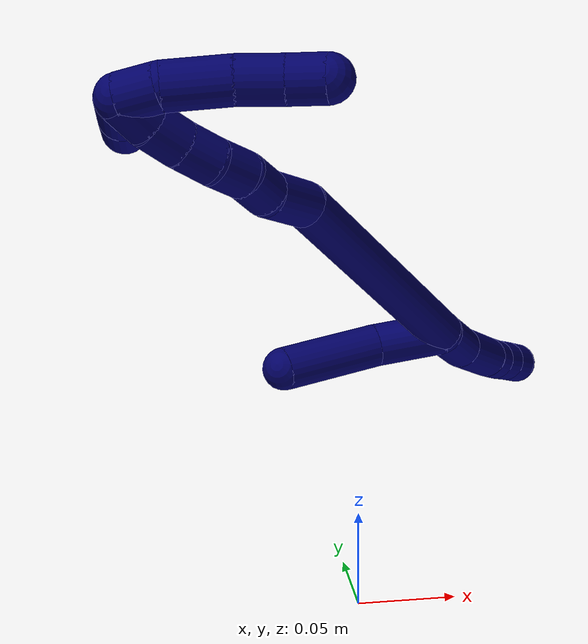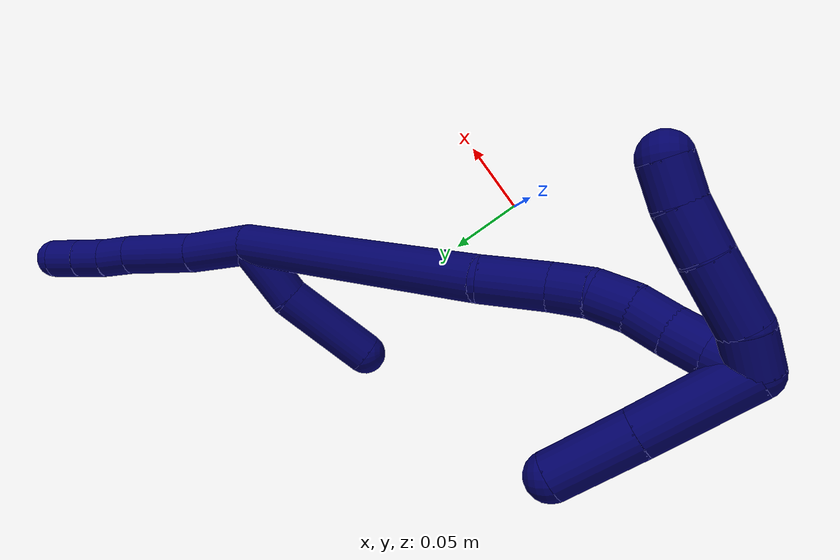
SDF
<sdf version="1.7">
 <world name="default">
  <model name="7">
   <static>0</static>
   <link name="7">
    <collision name="collision-cylinder-e_1_2_8">
     <pose>0.000343 -3.3e-05 0.021095 0.001566 0.01628 1.3e-05</pose>
     <geometry><cylinder><radius>0.0125</radius><length>0.042196</length></cylinder></geometry>
     <surface>
      <friction><ode><mu>1.16</mu><mu2>1.16</mu2><slip1>0</slip1><slip2>0</slip2></ode></friction>
      <contact><ode><kp>1e+06</kp><kd>1</kd><max_vel>0</max_vel><min_depth>0.001</min_depth></ode></contact>
     </surface>
    </collision>
    <visual name="visual-cylinder-e_1_2_8">
     <pose>0.000343 -3.3e-05 0.021095 0.001566 0.01628 1.3e-05</pose>
     <geometry><cylinder><radius>0.0125</radius><length>0.042196</length></cylinder></geometry>
     <material><ambient>0.003922 0 0.403922 1</ambient></material>
    </visual>
    <collision name="collision-cylinder-e_2_8_9">
     <pose>0.003801 -0.000459 0.065854 0.016623 0.130811 0.001089</pose>
     <geometry><cylinder><radius>0.0125</radius><length>0.047742</length></cylinder></geometry>
     <surface>
      <friction><ode><mu>1.16</mu><mu2>1.16</mu2><slip1>0</slip1><slip2>0</slip2></ode></friction>
      <contact><ode><kp>1e+06</kp><kd>1</kd><max_vel>0</max_vel><min_depth>0.001</min_depth></ode></contact>
     </surface>
    </collision>
    <visual name="visual-cylinder-e_2_8_9">
     <pose>0.003801 -0.000459 0.065854 0.016623 0.130811 0.001089</pose>
     <geometry><cylinder><radius>0.0125</radius><length>0.047742</length></cylinder></geometry>
     <material><ambient>0.003922 0 0.403922 1</ambient></material>
    </visual>
    <collision name="collision-cylinder-e_3_9_10">
     <pose>0.007782 -0.001818 0.099436 0.097001 0.08682 0.004217</pose>
     <geometry><cylinder><radius>0.0125</radius><length>0.020007</length></cylinder></geometry>
     <surface>
      <friction><ode><mu>1.16</mu><mu2>1.16</mu2><slip1>0</slip1><slip2>0</slip2></ode></friction>
      <contact><ode><kp>1e+06</kp><kd>1</kd><max_vel>0</max_vel><min_depth>0.001</min_depth></ode></contact>
     </surface>
    </collision>
    <visual name="visual-cylinder-e_3_9_10">
     <pose>0.007782 -0.001818 0.099436 0.097001 0.08682 0.004217</pose>
     <geometry><cylinder><radius>0.0125</radius><length>0.020007</length></cylinder></geometry>
     <material><ambient>0.003922 0 0.403922 1</ambient></material>
    </visual>
    <collision name="collision-cylinder-e_4_10_11">
     <pose>0.010431 -0.003573 0.119175 0.080233 0.178965 0.007203</pose>
     <geometry><cylinder><radius>0.0125</radius><length>0.020024</length></cylinder></geometry>
     <surface>
      <friction><ode><mu>1.16</mu><mu2>1.16</mu2><slip1>0</slip1><slip2>0</slip2></ode></friction>
      <contact><ode><kp>1e+06</kp><kd>1</kd><max_vel>0</max_vel><min_depth>0.001</min_depth></ode></contact>
     </surface>
    </collision>
    <visual name="visual-cylinder-e_4_10_11">
     <pose>0.010431 -0.003573 0.119175 0.080233 0.178965 0.007203</pose>
     <geometry><cylinder><radius>0.0125</radius><length>0.020024</length></cylinder></geometry>
     <material><ambient>0.003922 0 0.403922 1</ambient></material>
    </visual>
    <collision name="collision-cylinder-e_5_11_6">
     <pose>0.014019 -0.004915 0.138832 0.056105 0.181281 0.005101</pose>
     <geometry><cylinder><radius>0.0125</radius><length>0.020032</length></cylinder></geometry>
     <surface>
      <friction><ode><mu>1.16</mu><mu2>1.16</mu2><slip1>0</slip1><slip2>0</slip2></ode></friction>
      <contact><ode><kp>1e+06</kp><kd>1</kd><max_vel>0</max_vel><min_depth>0.001</min_depth></ode></contact>
     </surface>
    </collision>
    <visual name="visual-cylinder-e_5_11_6">
     <pose>0.014019 -0.004915 0.138832 0.056105 0.181281 0.005101</pose>
     <geometry><cylinder><radius>0.0125</radius><length>0.020032</length></cylinder></geometry>
     <material><ambient>0.003922 0 0.403922 1</ambient></material>
    </visual>
    <collision name="collision-cylinder-e_1_2_12">
     <pose>-0.018562 -0.002818 -0.007963 2.80144 -1.14374 -2.62008</pose>
     <geometry><cylinder><radius>0.0125</radius><length>0.040788</length></cylinder></geometry>
     <surface>
      <friction><ode><mu>1.16</mu><mu2>1.16</mu2><slip1>0</slip1><slip2>0</slip2></ode></friction>
      <contact><ode><kp>1e+06</kp><kd>1</kd><max_vel>0</max_vel><min_depth>0.001</min_depth></ode></contact>
     </surface>
    </collision>
    <visual name="visual-cylinder-e_1_2_12">
     <pose>-0.018562 -0.002818 -0.007963 2.80144 -1.14374 -2.62008</pose>
     <geometry><cylinder><radius>0.0125</radius><length>0.040788</length></cylinder></geometry>
     <material><ambient>0.003922 0 0.403922 1</ambient></material>
    </visual>
    <collision name="collision-cylinder-e_2_12_5">
     <pose>-0.061027 -0.005319 -0.033393 -3.12344 -0.939644 3.10585</pose>
     <geometry><cylinder><radius>0.0125</radius><length>0.059212</length></cylinder></geometry>
     <surface>
      <friction><ode><mu>1.16</mu><mu2>1.16</mu2><slip1>0</slip1><slip2>0</slip2></ode></friction>
      <contact><ode><kp>1e+06</kp><kd>1</kd><max_vel>0</max_vel><min_depth>0.001</min_depth></ode></contact>
     </surface>
    </collision>
    <visual name="visual-cylinder-e_2_12_5">
     <pose>-0.061027 -0.005319 -0.033393 -3.12344 -0.939644 3.10585</pose>
     <geometry><cylinder><radius>0.0125</radius><length>0.059212</length></cylinder></geometry>
     <material><ambient>0.003922 0 0.403922 1</ambient></material>
    </visual>
    <collision name="collision-cylinder-e_1_2_13">
     <pose>-0.008606 -0.023361 -0.077602 2.84919 -0.10579 -0.690314</pose>
     <geometry><cylinder><radius>0.0125</radius><length>0.162995</length></cylinder></geometry>
     <surface>
      <friction><ode><mu>1.16</mu><mu2>1.16</mu2><slip1>0</slip1><slip2>0</slip2></ode></friction>
      <contact><ode><kp>1e+06</kp><kd>1</kd><max_vel>0</max_vel><min_depth>0.001</min_depth></ode></contact>
     </surface>
    </collision>
    <visual name="visual-cylinder-e_1_2_13">
     <pose>-0.008606 -0.023361 -0.077602 2.84919 -0.10579 -0.690314</pose>
     <geometry><cylinder><radius>0.0125</radius><length>0.162995</length></cylinder></geometry>
     <material><ambient>0.003922 0 0.403922 1</ambient></material>
    </visual>
    <collision name="collision-cylinder-e_2_13_14">
     <pose>-0.021945 -0.046765 -0.172494 3.13907 -0.267249 -3.12282</pose>
     <geometry><cylinder><radius>0.0125</radius><length>0.035853</length></cylinder></geometry>
     <surface>
      <friction><ode><mu>1.16</mu><mu2>1.16</mu2><slip1>0</slip1><slip2>0</slip2></ode></friction>
      <contact><ode><kp>1e+06</kp><kd>1</kd><max_vel>0</max_vel><min_depth>0.001</min_depth></ode></contact>
     </surface>
    </collision>
    <visual name="visual-cylinder-e_2_13_14">
     <pose>-0.021945 -0.046765 -0.172494 3.13907 -0.267249 -3.12282</pose>
     <geometry><cylinder><radius>0.0125</radius><length>0.035853</length></cylinder></geometry>
     <material><ambient>0.003922 0 0.403922 1</ambient></material>
    </visual>
    <collision name="collision-cylinder-e_3_14_15">
     <pose>-0.02804 -0.049471 -0.199705 2.8794 -0.131762 -0.9279</pose>
     <geometry><cylinder><radius>0.0125</radius><length>0.020724</length></cylinder></geometry>
     <surface>
      <friction><ode><mu>1.16</mu><mu2>1.16</mu2><slip1>0</slip1><slip2>0</slip2></ode></friction>
      <contact><ode><kp>1e+06</kp><kd>1</kd><max_vel>0</max_vel><min_depth>0.001</min_depth></ode></contact>
     </surface>
    </collision>
    <visual name="visual-cylinder-e_3_14_15">
     <pose>-0.02804 -0.049471 -0.199705 2.8794 -0.131762 -0.9279</pose>
     <geometry><cylinder><radius>0.0125</radius><length>0.020724</length></cylinder></geometry>
     <material><ambient>0.003922 0 0.403922 1</ambient></material>
    </visual>
    <collision name="collision-cylinder-e_4_15_16">
     <pose>-0.033202 -0.054764 -0.218714 2.85986 -0.381968 -1.87593</pose>
     <geometry><cylinder><radius>0.0125</radius><length>0.020391</length></cylinder></geometry>
     <surface>
      <friction><ode><mu>1.16</mu><mu2>1.16</mu2><slip1>0</slip1><slip2>0</slip2></ode></friction>
      <contact><ode><kp>1e+06</kp><kd>1</kd><max_vel>0</max_vel><min_depth>0.001</min_depth></ode></contact>
     </surface>
    </collision>
    <visual name="visual-cylinder-e_4_15_16">
     <pose>-0.033202 -0.054764 -0.218714 2.85986 -0.381968 -1.87593</pose>
     <geometry><cylinder><radius>0.0125</radius><length>0.020391</length></cylinder></geometry>
     <material><ambient>0.003922 0 0.403922 1</ambient></material>
    </visual>
    <collision name="collision-cylinder-e_5_16_17">
     <pose>-0.041272 -0.061804 -0.235704 2.63262 -0.440824 -1.42206</pose>
     <geometry><cylinder><radius>0.0125</radius><length>0.020013</length></cylinder></geometry>
     <surface>
      <friction><ode><mu>1.16</mu><mu2>1.16</mu2><slip1>0</slip1><slip2>0</slip2></ode></friction>
      <contact><ode><kp>1e+06</kp><kd>1</kd><max_vel>0</max_vel><min_depth>0.001</min_depth></ode></contact>
     </surface>
    </collision>
    <visual name="visual-cylinder-e_5_16_17">
     <pose>-0.041272 -0.061804 -0.235704 2.63262 -0.440824 -1.42206</pose>
     <geometry><cylinder><radius>0.0125</radius><length>0.020013</length></cylinder></geometry>
     <material><ambient>0.003922 0 0.403922 1</ambient></material>
    </visual>
    <collision name="collision-cylinder-e_6_17_18">
     <pose>-0.049059 -0.070825 -0.251765 2.62715 -0.359105 -1.20799</pose>
     <geometry><cylinder><radius>0.0125</radius><length>0.020021</length></cylinder></geometry>
     <surface>
      <friction><ode><mu>1.16</mu><mu2>1.16</mu2><slip1>0</slip1><slip2>0</slip2></ode></friction>
      <contact><ode><kp>1e+06</kp><kd>1</kd><max_vel>0</max_vel><min_depth>0.001</min_depth></ode></contact>
     </surface>
    </collision>
    <visual name="visual-cylinder-e_6_17_18">
     <pose>-0.049059 -0.070825 -0.251765 2.62715 -0.359105 -1.20799</pose>
     <geometry><cylinder><radius>0.0125</radius><length>0.020021</length></cylinder></geometry>
     <material><ambient>0.003922 0 0.403922 1</ambient></material>
    </visual>
    <collision name="collision-cylinder-e_7_18_1">
     <pose>-0.054587 -0.080533 -0.268292 2.59451 -0.202319 -0.694259</pose>
     <geometry><cylinder><radius>0.0125</radius><length>0.020004</length></cylinder></geometry>
     <surface>
      <friction><ode><mu>1.16</mu><mu2>1.16</mu2><slip1>0</slip1><slip2>0</slip2></ode></friction>
      <contact><ode><kp>1e+06</kp><kd>1</kd><max_vel>0</max_vel><min_depth>0.001</min_depth></ode></contact>
     </surface>
    </collision>
    <visual name="visual-cylinder-e_7_18_1">
     <pose>-0.054587 -0.080533 -0.268292 2.59451 -0.202319 -0.694259</pose>
     <geometry><cylinder><radius>0.0125</radius><length>0.020004</length></cylinder></geometry>
     <material><ambient>0.003922 0 0.403922 1</ambient></material>
    </visual>
    <collision name="collision-cylinder-e_1_1_19">
     <pose>-0.046521 -0.083586 -0.276082 -1.29523 1.36301 -1.10072</pose>
     <geometry><cylinder><radius>0.0125</radius><length>0.020596</length></cylinder></geometry>
     <surface>
      <friction><ode><mu>1.16</mu><mu2>1.16</mu2><slip1>0</slip1><slip2>0</slip2></ode></friction>
      <contact><ode><kp>1e+06</kp><kd>1</kd><max_vel>0</max_vel><min_depth>0.001</min_depth></ode></contact>
     </surface>
    </collision>
    <visual name="visual-cylinder-e_1_1_19">
     <pose>-0.046521 -0.083586 -0.276082 -1.29523 1.36301 -1.10072</pose>
     <geometry><cylinder><radius>0.0125</radius><length>0.020596</length></cylinder></geometry>
     <material><ambient>0.003922 0 0.403922 1</ambient></material>
    </visual>
    <collision name="collision-cylinder-e_2_19_20">
     <pose>-0.020615 -0.077081 -0.270115 -0.69148 1.15467 -0.460918</pose>
     <geometry><cylinder><radius>0.0125</radius><length>0.034613</length></cylinder></geometry>
     <surface>
      <friction><ode><mu>1.16</mu><mu2>1.16</mu2><slip1>0</slip1><slip2>0</slip2></ode></friction>
      <contact><ode><kp>1e+06</kp><kd>1</kd><max_vel>0</max_vel><min_depth>0.001</min_depth></ode></contact>
     </surface>
    </collision>
    <visual name="visual-cylinder-e_2_19_20">
     <pose>-0.020615 -0.077081 -0.270115 -0.69148 1.15467 -0.460918</pose>
     <geometry><cylinder><radius>0.0125</radius><length>0.034613</length></cylinder></geometry>
     <material><ambient>0.003922 0 0.403922 1</ambient></material>
    </visual>
    <collision name="collision-cylinder-e_3_20_21">
     <pose>0.006149 -0.068365 -0.261138 -0.870235 1.09992 -0.555213</pose>
     <geometry><cylinder><radius>0.0125</radius><length>0.024538</length></cylinder></geometry>
     <surface>
      <friction><ode><mu>1.16</mu><mu2>1.16</mu2><slip1>0</slip1><slip2>0</slip2></ode></friction>
      <contact><ode><kp>1e+06</kp><kd>1</kd><max_vel>0</max_vel><min_depth>0.001</min_depth></ode></contact>
     </surface>
    </collision>
    <visual name="visual-cylinder-e_3_20_21">
     <pose>0.006149 -0.068365 -0.261138 -0.870235 1.09992 -0.555213</pose>
     <geometry><cylinder><radius>0.0125</radius><length>0.024538</length></cylinder></geometry>
     <material><ambient>0.003922 0 0.403922 1</ambient></material>
    </visual>
    <collision name="collision-cylinder-e_4_21_4">
     <pose>0.026283 -0.060174 -0.255995 -1.19456 1.13968 -0.82197</pose>
     <geometry><cylinder><radius>0.0125</radius><length>0.020253</length></cylinder></geometry>
     <surface>
      <friction><ode><mu>1.16</mu><mu2>1.16</mu2><slip1>0</slip1><slip2>0</slip2></ode></friction>
      <contact><ode><kp>1e+06</kp><kd>1</kd><max_vel>0</max_vel><min_depth>0.001</min_depth></ode></contact>
     </surface>
    </collision>
    <visual name="visual-cylinder-e_4_21_4">
     <pose>0.026283 -0.060174 -0.255995 -1.19456 1.13968 -0.82197</pose>
     <geometry><cylinder><radius>0.0125</radius><length>0.020253</length></cylinder></geometry>
     <material><ambient>0.003922 0 0.403922 1</ambient></material>
    </visual>
    <collision name="collision-cylinder-e_1_1_22">
     <pose>-0.06475 -0.094276 -0.251639 0.332701 -0.298747 -0.050526</pose>
     <geometry><cylinder><radius>0.0125</radius><length>0.055399</length></cylinder></geometry>
     <surface>
      <friction><ode><mu>1.16</mu><mu2>1.16</mu2><slip1>0</slip1><slip2>0</slip2></ode></friction>
      <contact><ode><kp>1e+06</kp><kd>1</kd><max_vel>0</max_vel><min_depth>0.001</min_depth></ode></contact>
     </surface>
    </collision>
    <visual name="visual-cylinder-e_1_1_22">
     <pose>-0.06475 -0.094276 -0.251639 0.332701 -0.298747 -0.050526</pose>
     <geometry><cylinder><radius>0.0125</radius><length>0.055399</length></cylinder></geometry>
     <material><ambient>0.003922 0 0.403922 1</ambient></material>
    </visual>
    <collision name="collision-cylinder-e_2_22_3">
     <pose>-0.079261 -0.109664 -0.206335 0.320887 -0.289136 -0.047112</pose>
     <geometry><cylinder><radius>0.0125</radius><length>0.044601</length></cylinder></geometry>
     <surface>
      <friction><ode><mu>1.16</mu><mu2>1.16</mu2><slip1>0</slip1><slip2>0</slip2></ode></friction>
      <contact><ode><kp>1e+06</kp><kd>1</kd><max_vel>0</max_vel><min_depth>0.001</min_depth></ode></contact>
     </surface>
    </collision>
    <visual name="visual-cylinder-e_2_22_3">
     <pose>-0.079261 -0.109664 -0.206335 0.320887 -0.289136 -0.047112</pose>
     <geometry><cylinder><radius>0.0125</radius><length>0.044601</length></cylinder></geometry>
     <material><ambient>0.003922 0 0.403922 1</ambient></material>
    </visual>
    <collision name="collision-sphere-3">
     <pose>-0.085619 -0.116406 -0.186051 0 -0 0</pose>
     <geometry><sphere><radius>0.0125</radius></sphere></geometry>
     <surface>
      <friction><ode><mu>1.16</mu><mu2>1.16</mu2><slip1>0</slip1><slip2>0</slip2></ode></friction>
      <contact><ode><kp>1e+06</kp><kd>1</kd><max_vel>0</max_vel><min_depth>0.001</min_depth></ode></contact>
     </surface>
    </collision>
    <visual name="visual-sphere-3">
     <pose>-0.085619 -0.116406 -0.186051 0 -0 0</pose>
     <geometry><sphere><radius>0.0125</radius></sphere></geometry>
     <material><ambient>0.003922 0 0.403922 1</ambient></material>
    </visual>
    <collision name="collision-sphere-22">
     <pose>-0.072902 -0.102922 -0.226618 0 -0 0</pose>
     <geometry><sphere><radius>0.0125</radius></sphere></geometry>
     <surface>
      <friction><ode><mu>1.16</mu><mu2>1.16</mu2><slip1>0</slip1><slip2>0</slip2></ode></friction>
      <contact><ode><kp>1e+06</kp><kd>1</kd><max_vel>0</max_vel><min_depth>0.001</min_depth></ode></contact>
     </surface>
    </collision>
    <visual name="visual-sphere-22">
     <pose>-0.072902 -0.102922 -0.226618 0 -0 0</pose>
     <geometry><sphere><radius>0.0125</radius></sphere></geometry>
     <material><ambient>0.003922 0 0.403922 1</ambient></material>
    </visual>
    <collision name="collision-sphere-4">
     <pose>0.035482 -0.056238 -0.254441 0 -0 0</pose>
     <geometry><sphere><radius>0.0125</radius></sphere></geometry>
     <surface>
      <friction><ode><mu>1.16</mu><mu2>1.16</mu2><slip1>0</slip1><slip2>0</slip2></ode></friction>
      <contact><ode><kp>1e+06</kp><kd>1</kd><max_vel>0</max_vel><min_depth>0.001</min_depth></ode></contact>
     </surface>
    </collision>
    <visual name="visual-sphere-4">
     <pose>0.035482 -0.056238 -0.254441 0 -0 0</pose>
     <geometry><sphere><radius>0.0125</radius></sphere></geometry>
     <material><ambient>0.003922 0 0.403922 1</ambient></material>
    </visual>
    <collision name="collision-sphere-21">
     <pose>0.017083 -0.06411 -0.25755 0 -0 0</pose>
     <geometry><sphere><radius>0.0125</radius></sphere></geometry>
     <surface>
      <friction><ode><mu>1.16</mu><mu2>1.16</mu2><slip1>0</slip1><slip2>0</slip2></ode></friction>
      <contact><ode><kp>1e+06</kp><kd>1</kd><max_vel>0</max_vel><min_depth>0.001</min_depth></ode></contact>
     </surface>
    </collision>
    <visual name="visual-sphere-21">
     <pose>0.017083 -0.06411 -0.25755 0 -0 0</pose>
     <geometry><sphere><radius>0.0125</radius></sphere></geometry>
     <material><ambient>0.003922 0 0.403922 1</ambient></material>
    </visual>
    <collision name="collision-sphere-20">
     <pose>-0.004785 -0.07262 -0.264727 0 -0 0</pose>
     <geometry><sphere><radius>0.0125</radius></sphere></geometry>
     <surface>
      <friction><ode><mu>1.16</mu><mu2>1.16</mu2><slip1>0</slip1><slip2>0</slip2></ode></friction>
      <contact><ode><kp>1e+06</kp><kd>1</kd><max_vel>0</max_vel><min_depth>0.001</min_depth></ode></contact>
     </surface>
    </collision>
    <visual name="visual-sphere-20">
     <pose>-0.004785 -0.07262 -0.264727 0 -0 0</pose>
     <geometry><sphere><radius>0.0125</radius></sphere></geometry>
     <material><ambient>0.003922 0 0.403922 1</ambient></material>
    </visual>
    <collision name="collision-sphere-6">
     <pose>0.015825 -0.005467 0.148668 0 -0 0</pose>
     <geometry><sphere><radius>0.0125</radius></sphere></geometry>
     <surface>
      <friction><ode><mu>1.16</mu><mu2>1.16</mu2><slip1>0</slip1><slip2>0</slip2></ode></friction>
      <contact><ode><kp>1e+06</kp><kd>1</kd><max_vel>0</max_vel><min_depth>0.001</min_depth></ode></contact>
     </surface>
    </collision>
    <visual name="visual-sphere-6">
     <pose>0.015825 -0.005467 0.148668 0 -0 0</pose>
     <geometry><sphere><radius>0.0125</radius></sphere></geometry>
     <material><ambient>0.003922 0 0.403922 1</ambient></material>
    </visual>
    <collision name="collision-sphere-11">
     <pose>0.012214 -0.004362 0.128996 0 -0 0</pose>
     <geometry><sphere><radius>0.0125</radius></sphere></geometry>
     <surface>
      <friction><ode><mu>1.16</mu><mu2>1.16</mu2><slip1>0</slip1><slip2>0</slip2></ode></friction>
      <contact><ode><kp>1e+06</kp><kd>1</kd><max_vel>0</max_vel><min_depth>0.001</min_depth></ode></contact>
     </surface>
    </collision>
    <visual name="visual-sphere-11">
     <pose>0.012214 -0.004362 0.128996 0 -0 0</pose>
     <geometry><sphere><radius>0.0125</radius></sphere></geometry>
     <material><ambient>0.003922 0 0.403922 1</ambient></material>
    </visual>
    <collision name="collision-sphere-10">
     <pose>0.008649 -0.002783 0.109355 0 -0 0</pose>
     <geometry><sphere><radius>0.0125</radius></sphere></geometry>
     <surface>
      <friction><ode><mu>1.16</mu><mu2>1.16</mu2><slip1>0</slip1><slip2>0</slip2></ode></friction>
      <contact><ode><kp>1e+06</kp><kd>1</kd><max_vel>0</max_vel><min_depth>0.001</min_depth></ode></contact>
     </surface>
    </collision>
    <visual name="visual-sphere-10">
     <pose>0.008649 -0.002783 0.109355 0 -0 0</pose>
     <geometry><sphere><radius>0.0125</radius></sphere></geometry>
     <material><ambient>0.003922 0 0.403922 1</ambient></material>
    </visual>
    <collision name="collision-sphere-9">
     <pose>0.006914 -0.000853 0.089518 0 -0 0</pose>
     <geometry><sphere><radius>0.0125</radius></sphere></geometry>
     <surface>
      <friction><ode><mu>1.16</mu><mu2>1.16</mu2><slip1>0</slip1><slip2>0</slip2></ode></friction>
      <contact><ode><kp>1e+06</kp><kd>1</kd><max_vel>0</max_vel><min_depth>0.001</min_depth></ode></contact>
     </surface>
    </collision>
    <visual name="visual-sphere-9">
     <pose>0.006914 -0.000853 0.089518 0 -0 0</pose>
     <geometry><sphere><radius>0.0125</radius></sphere></geometry>
     <material><ambient>0.003922 0 0.403922 1</ambient></material>
    </visual>
    <collision name="collision-sphere-2">
     <geometry><sphere><radius>0.0125</radius></sphere></geometry>
     <surface>
      <friction><ode><mu>1.16</mu><mu2>1.16</mu2><slip1>0</slip1><slip2>0</slip2></ode></friction>
      <contact><ode><kp>1e+06</kp><kd>1</kd><max_vel>0</max_vel><min_depth>0.001</min_depth></ode></contact>
     </surface>
    </collision>
    <visual name="visual-sphere-2">
     <geometry><sphere><radius>0.0125</radius></sphere></geometry>
     <material><ambient>0.003922 0 0.403922 1</ambient></material>
    </visual>
    <collision name="collision-sphere-19">
     <pose>-0.036444 -0.081542 -0.275504 0 -0 0</pose>
     <geometry><sphere><radius>0.0125</radius></sphere></geometry>
     <surface>
      <friction><ode><mu>1.16</mu><mu2>1.16</mu2><slip1>0</slip1><slip2>0</slip2></ode></friction>
      <contact><ode><kp>1e+06</kp><kd>1</kd><max_vel>0</max_vel><min_depth>0.001</min_depth></ode></contact>
     </surface>
    </collision>
    <visual name="visual-sphere-19">
     <pose>-0.036444 -0.081542 -0.275504 0 -0 0</pose>
     <geometry><sphere><radius>0.0125</radius></sphere></geometry>
     <material><ambient>0.003922 0 0.403922 1</ambient></material>
    </visual>
    <collision name="collision-sphere-8">
     <pose>0.000687 -6.6e-05 0.04219 0 -0 0</pose>
     <geometry><sphere><radius>0.0125</radius></sphere></geometry>
     <surface>
      <friction><ode><mu>1.16</mu><mu2>1.16</mu2><slip1>0</slip1><slip2>0</slip2></ode></friction>
      <contact><ode><kp>1e+06</kp><kd>1</kd><max_vel>0</max_vel><min_depth>0.001</min_depth></ode></contact>
     </surface>
    </collision>
    <visual name="visual-sphere-8">
     <pose>0.000687 -6.6e-05 0.04219 0 -0 0</pose>
     <geometry><sphere><radius>0.0125</radius></sphere></geometry>
     <material><ambient>0.003922 0 0.403922 1</ambient></material>
    </visual>
    <collision name="collision-sphere-12">
     <pose>-0.037125 -0.005636 -0.015926 0 -0 0</pose>
     <geometry><sphere><radius>0.0125</radius></sphere></geometry>
     <surface>
      <friction><ode><mu>1.16</mu><mu2>1.16</mu2><slip1>0</slip1><slip2>0</slip2></ode></friction>
      <contact><ode><kp>1e+06</kp><kd>1</kd><max_vel>0</max_vel><min_depth>0.001</min_depth></ode></contact>
     </surface>
    </collision>
    <visual name="visual-sphere-12">
     <pose>-0.037125 -0.005636 -0.015926 0 -0 0</pose>
     <geometry><sphere><radius>0.0125</radius></sphere></geometry>
     <material><ambient>0.003922 0 0.403922 1</ambient></material>
    </visual>
    <collision name="collision-sphere-5">
     <pose>-0.08493 -0.005002 -0.05086 0 -0 0</pose>
     <geometry><sphere><radius>0.0125</radius></sphere></geometry>
     <surface>
      <friction><ode><mu>1.16</mu><mu2>1.16</mu2><slip1>0</slip1><slip2>0</slip2></ode></friction>
      <contact><ode><kp>1e+06</kp><kd>1</kd><max_vel>0</max_vel><min_depth>0.001</min_depth></ode></contact>
     </surface>
    </collision>
    <visual name="visual-sphere-5">
     <pose>-0.08493 -0.005002 -0.05086 0 -0 0</pose>
     <geometry><sphere><radius>0.0125</radius></sphere></geometry>
     <material><ambient>0.003922 0 0.403922 1</ambient></material>
    </visual>
    <collision name="collision-sphere-13">
     <pose>-0.017211 -0.046721 -0.155204 0 -0 0</pose>
     <geometry><sphere><radius>0.0125</radius></sphere></geometry>
     <surface>
      <friction><ode><mu>1.16</mu><mu2>1.16</mu2><slip1>0</slip1><slip2>0</slip2></ode></friction>
      <contact><ode><kp>1e+06</kp><kd>1</kd><max_vel>0</max_vel><min_depth>0.001</min_depth></ode></contact>
     </surface>
    </collision>
    <visual name="visual-sphere-13">
     <pose>-0.017211 -0.046721 -0.155204 0 -0 0</pose>
     <geometry><sphere><radius>0.0125</radius></sphere></geometry>
     <material><ambient>0.003922 0 0.403922 1</ambient></material>
    </visual>
    <collision name="collision-sphere-14">
     <pose>-0.026679 -0.046808 -0.189783 0 -0 0</pose>
     <geometry><sphere><radius>0.0125</radius></sphere></geometry>
     <surface>
      <friction><ode><mu>1.16</mu><mu2>1.16</mu2><slip1>0</slip1><slip2>0</slip2></ode></friction>
      <contact><ode><kp>1e+06</kp><kd>1</kd><max_vel>0</max_vel><min_depth>0.001</min_depth></ode></contact>
     </surface>
    </collision>
    <visual name="visual-sphere-14">
     <pose>-0.026679 -0.046808 -0.189783 0 -0 0</pose>
     <geometry><sphere><radius>0.0125</radius></sphere></geometry>
     <material><ambient>0.003922 0 0.403922 1</ambient></material>
    </visual>
    <collision name="collision-sphere-15">
     <pose>-0.029402 -0.052134 -0.209626 0 -0 0</pose>
     <geometry><sphere><radius>0.0125</radius></sphere></geometry>
     <surface>
      <friction><ode><mu>1.16</mu><mu2>1.16</mu2><slip1>0</slip1><slip2>0</slip2></ode></friction>
      <contact><ode><kp>1e+06</kp><kd>1</kd><max_vel>0</max_vel><min_depth>0.001</min_depth></ode></contact>
     </surface>
    </collision>
    <visual name="visual-sphere-15">
     <pose>-0.029402 -0.052134 -0.209626 0 -0 0</pose>
     <geometry><sphere><radius>0.0125</radius></sphere></geometry>
     <material><ambient>0.003922 0 0.403922 1</ambient></material>
    </visual>
    <collision name="collision-sphere-16">
     <pose>-0.037002 -0.057394 -0.227801 0 -0 0</pose>
     <geometry><sphere><radius>0.0125</radius></sphere></geometry>
     <surface>
      <friction><ode><mu>1.16</mu><mu2>1.16</mu2><slip1>0</slip1><slip2>0</slip2></ode></friction>
      <contact><ode><kp>1e+06</kp><kd>1</kd><max_vel>0</max_vel><min_depth>0.001</min_depth></ode></contact>
     </surface>
    </collision>
    <visual name="visual-sphere-16">
     <pose>-0.037002 -0.057394 -0.227801 0 -0 0</pose>
     <geometry><sphere><radius>0.0125</radius></sphere></geometry>
     <material><ambient>0.003922 0 0.403922 1</ambient></material>
    </visual>
    <collision name="collision-sphere-17">
     <pose>-0.045541 -0.066214 -0.243607 0 -0 0</pose>
     <geometry><sphere><radius>0.0125</radius></sphere></geometry>
     <surface>
      <friction><ode><mu>1.16</mu><mu2>1.16</mu2><slip1>0</slip1><slip2>0</slip2></ode></friction>
      <contact><ode><kp>1e+06</kp><kd>1</kd><max_vel>0</max_vel><min_depth>0.001</min_depth></ode></contact>
     </surface>
    </collision>
    <visual name="visual-sphere-17">
     <pose>-0.045541 -0.066214 -0.243607 0 -0 0</pose>
     <geometry><sphere><radius>0.0125</radius></sphere></geometry>
     <material><ambient>0.003922 0 0.403922 1</ambient></material>
    </visual>
    <collision name="collision-sphere-18">
     <pose>-0.052577 -0.075437 -0.259924 0 -0 0</pose>
     <geometry><sphere><radius>0.0125</radius></sphere></geometry>
     <surface>
      <friction><ode><mu>1.16</mu><mu2>1.16</mu2><slip1>0</slip1><slip2>0</slip2></ode></friction>
      <contact><ode><kp>1e+06</kp><kd>1</kd><max_vel>0</max_vel><min_depth>0.001</min_depth></ode></contact>
     </surface>
    </collision>
    <visual name="visual-sphere-18">
     <pose>-0.052577 -0.075437 -0.259924 0 -0 0</pose>
     <geometry><sphere><radius>0.0125</radius></sphere></geometry>
     <material><ambient>0.003922 0 0.403922 1</ambient></material>
    </visual>
    <collision name="collision-sphere-1">
     <pose>-0.056597 -0.08563 -0.27666 0 -0 0</pose>
     <geometry><sphere><radius>0.0125</radius></sphere></geometry>
     <surface>
      <friction><ode><mu>1.16</mu><mu2>1.16</mu2><slip1>0</slip1><slip2>0</slip2></ode></friction>
      <contact><ode><kp>1e+06</kp><kd>1</kd><max_vel>0</max_vel><min_depth>0.001</min_depth></ode></contact>
     </surface>
    </collision>
    <visual name="visual-sphere-1">
     <pose>-0.056597 -0.08563 -0.27666 0 -0 0</pose>
     <geometry><sphere><radius>0.0125</radius></sphere></geometry>
     <material><ambient>0.003922 0 0.403922 1</ambient></material>
    </visual>
    <inertial>
     <pose>-0.023984 -0.039935 -0.111252 0 -0 0</pose>
     <mass>0.75</mass>
     <inertia>
      <ixx>6.7e-05</ixx>
      <ixy>0</ixy>
      <ixz>0</ixz>
      <iyy>-0.000427</iyy>
      <iyz>0</iyz>
      <izz>0.00017</izz>
     </inertia>
    </inertial>
   </link>
   <pose>0.077682 0.168309 0.087836 -2.14972 -0.476805 -0.215271</pose>
  </model>
 </world>
</sdf>
